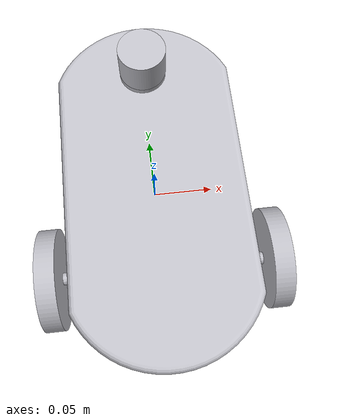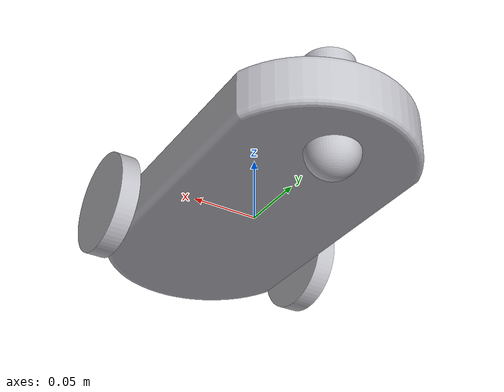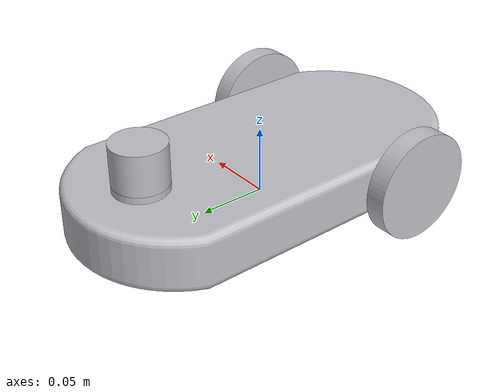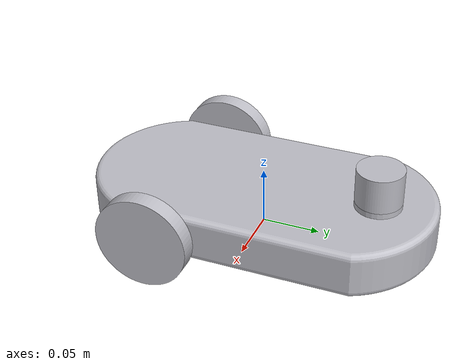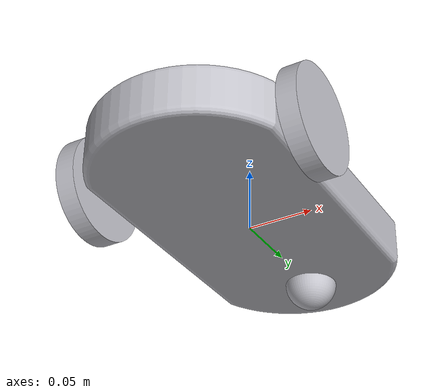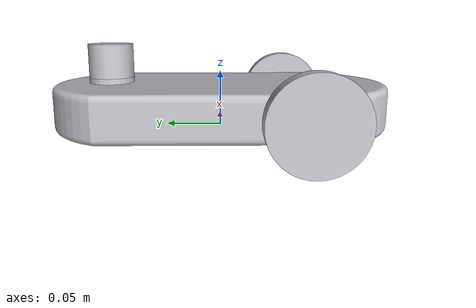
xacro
<?xml version="1.0" ?>
<robot name="car" xmlns:xacro="http://www.ros.org/wiki/xacro">

<xacro:include filename="$(find car_description)/urdf/materials.xacro" />
<xacro:include filename="$(find car_description)/urdf/car.trans" />
<xacro:include filename="$(find car_description)/urdf/car.gazebo" />
<link name="base_link">
  <inertial>
    <origin xyz="4.771085471542193e-10 -0.0006822110356098182 0.02021714330433763" rpy="0 0 0"/>
    <mass value="0.9822687822052116"/>
    <inertia ixx="0.006331" iyy="0.00181" izz="0.00788" ixy="-0.0" iyz="-2.1e-05" ixz="0.0"/>
  </inertial>
  <visual>
    <origin xyz="0 0 0" rpy="0 0 0"/>
    <geometry>
      <mesh filename="file://$(find car_description)/meshes/base_link.stl" scale="0.001 0.001 0.001"/>
    </geometry>
    <material name="silver"/>
  </visual>
  <collision>
    <origin xyz="0 0 0" rpy="0 0 0"/>
    <geometry>
      <mesh filename="file://$(find car_description)/meshes/base_link.stl" scale="0.001 0.001 0.001"/>
    </geometry>
  </collision>
</link>

<link name="left_wheel_1">
  <inertial>
    <origin xyz="-0.007500000000000007 1.49003268057335e-10 1.3877787807814457e-17" rpy="0 0 0"/>
    <mass value="0.040375748783935995"/>
    <inertia ixx="3.3e-05" iyy="1.7e-05" izz="1.7e-05" ixy="0.0" iyz="-0.0" ixz="-0.0"/>
  </inertial>
  <visual>
    <origin xyz="0.0775 0.07 -0.02" rpy="0 0 0"/>
    <geometry>
      <mesh filename="file://$(find car_description)/meshes/left_wheel_1.stl" scale="0.001 0.001 0.001"/>
    </geometry>
    <material name="silver"/>
  </visual>
  <collision>
    <origin xyz="0.0775 0.07 -0.02" rpy="0 0 0"/>
    <geometry>
      <mesh filename="file://$(find car_description)/meshes/left_wheel_1.stl" scale="0.001 0.001 0.001"/>
    </geometry>
  </collision>
</link>

<link name="right_wheel_1">
  <inertial>
    <origin xyz="0.007499999999999979 1.490032958129106e-10 3.8163916471489756e-17" rpy="0 0 0"/>
    <mass value="0.040375748783935995"/>
    <inertia ixx="3.3e-05" iyy="1.7e-05" izz="1.7e-05" ixy="-0.0" iyz="0.0" ixz="-0.0"/>
  </inertial>
  <visual>
    <origin xyz="-0.0775 0.07 -0.02" rpy="0 0 0"/>
    <geometry>
      <mesh filename="file://$(find car_description)/meshes/right_wheel_1.stl" scale="0.001 0.001 0.001"/>
    </geometry>
    <material name="silver"/>
  </visual>
  <collision>
    <origin xyz="-0.0775 0.07 -0.02" rpy="0 0 0"/>
    <geometry>
      <mesh filename="file://$(find car_description)/meshes/right_wheel_1.stl" scale="0.001 0.001 0.001"/>
    </geometry>
  </collision>
</link>

<link name="caster_1">
  <inertial>
    <origin xyz="0.0 0.0 0.0" rpy="0 0 0"/>
    <mass value="0.018229614971230372"/>
    <inertia ixx="3e-06" iyy="3e-06" izz="3e-06" ixy="-0.0" iyz="-0.0" ixz="0.0"/>
  </inertial>
  <visual>
    <origin xyz="-0.0 -0.1 -0.0" rpy="0 0 0"/>
    <geometry>
      <mesh filename="file://$(find car_description)/meshes/caster_1.stl" scale="0.001 0.001 0.001"/>
    </geometry>
    <material name="silver"/>
  </visual>
  <collision>
    <origin xyz="-0.0 -0.1 -0.0" rpy="0 0 0"/>
    <geometry>
      <mesh filename="file://$(find car_description)/meshes/caster_1.stl" scale="0.001 0.001 0.001"/>
    </geometry>
  </collision>
</link>

<link name="lidar_1">
  <inertial>
    <origin xyz="-3.769546289141941e-18 1.3877787807814457e-17 0.015" rpy="0 0 0"/>
    <mass value="0.03996105855366222"/>
    <inertia ixx="7e-06" iyy="7e-06" izz="8e-06" ixy="-0.0" iyz="0.0" ixz="-0.0"/>
  </inertial>
  <visual>
    <origin xyz="-0.0 -0.1 -0.045" rpy="0 0 0"/>
    <geometry>
      <mesh filename="file://$(find car_description)/meshes/lidar_1.stl" scale="0.001 0.001 0.001"/>
    </geometry>
    <material name="silver"/>
  </visual>
  <collision>
    <origin xyz="-0.0 -0.1 -0.045" rpy="0 0 0"/>
    <geometry>
      <mesh filename="file://$(find car_description)/meshes/lidar_1.stl" scale="0.001 0.001 0.001"/>
    </geometry>
  </collision>
</link>

<joint name="Revolute 4" type="continuous">
  <origin xyz="-0.0775 -0.07 0.02" rpy="0 0 0"/>
  <parent link="base_link"/>
  <child link="left_wheel_1"/>
  <axis xyz="1.0 0.0 0.0"/>
</joint>

<joint name="Revolute 5" type="continuous">
  <origin xyz="0.0775 -0.07 0.02" rpy="0 0 0"/>
  <parent link="base_link"/>
  <child link="right_wheel_1"/>
  <axis xyz="1.0 0.0 0.0"/>
</joint>

<joint name="Revolute 6" type="continuous">
  <origin xyz="0.0 0.1 0.0" rpy="0 0 0"/>
  <parent link="base_link"/>
  <child link="caster_1"/>
  <axis xyz="1.0 0.0 0.0"/>
</joint>

<joint name="Rigid 7" type="fixed">
  <origin xyz="0.0 0.1 0.045" rpy="0 0 0"/>
  <parent link="base_link"/>
  <child link="lidar_1"/>
</joint>

</robot>

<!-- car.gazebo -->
<robot name="car" xmlns:xacro="http://www.ros.org/wiki/xacro" >

<xacro:property name="body_color" value="Gazebo/Silver" />

<gazebo>
  <plugin name="control" filename="libgazebo_ros_control.so"/>
</gazebo>
<gazebo reference="base_link">
  <material>${body_color}</material>
  <mu1>0.2</mu1>
  <mu2>0.2</mu2>
  <selfCollide>true</selfCollide>
  <gravity>true</gravity>
</gazebo>

<gazebo reference="left_wheel_1">
  <material>${body_color}</material>
  <mu1>0.2</mu1>
  <mu2>0.2</mu2>
  <selfCollide>true</selfCollide>
</gazebo>

<gazebo reference="right_wheel_1">
  <material>${body_color}</material>
  <mu1>0.2</mu1>
  <mu2>0.2</mu2>
  <selfCollide>true</selfCollide>
</gazebo>

<gazebo reference="lidar_1">
  <material>${body_color}</material>
  <mu1>0.2</mu1>
  <mu2>0.2</mu2>
  <selfCollide>true</selfCollide>
</gazebo>

</robot>
